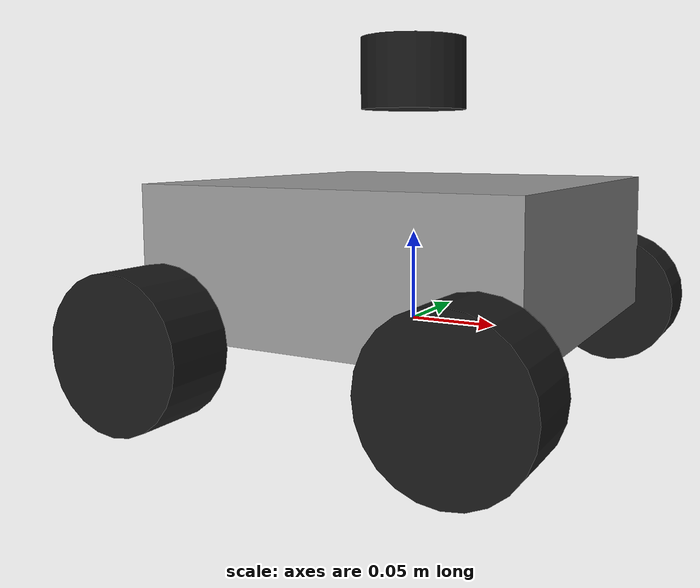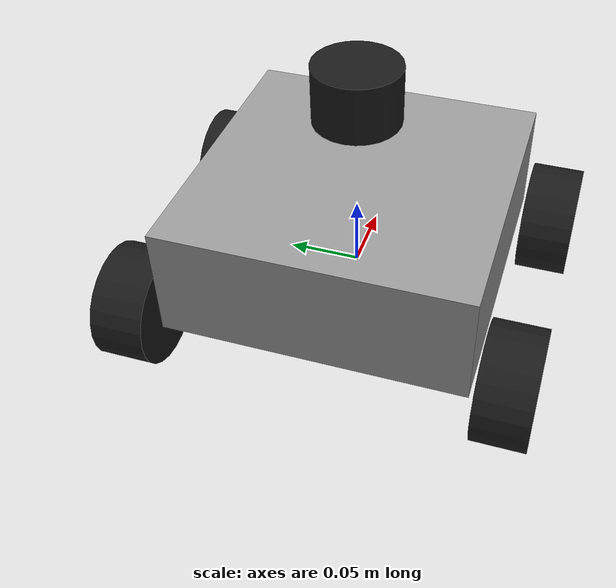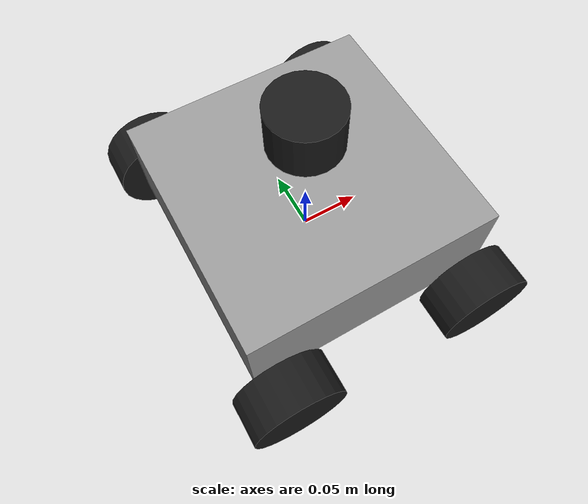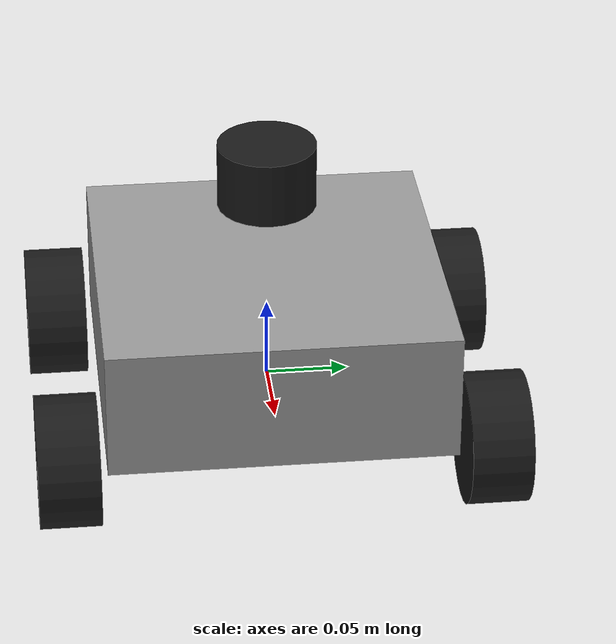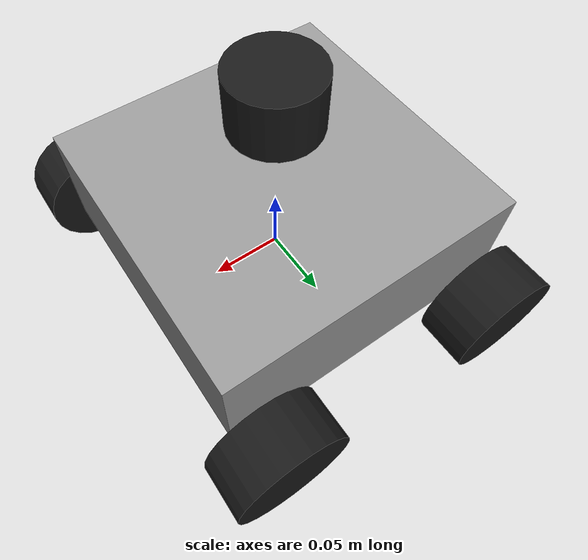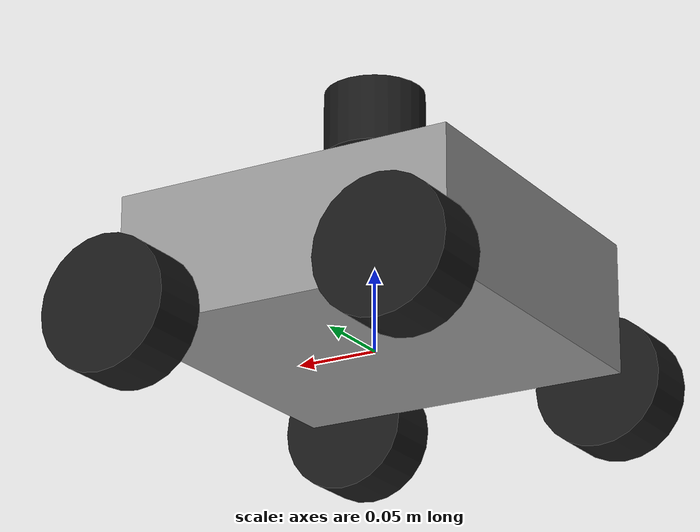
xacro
<?xml version="1.0"?>
<robot name="mecanum_agv" xmlns:xacro="http://www.ros.org/wiki/xacro">

  <!-- Measured dimensions (meters) of the real chassis —
       keep wheel_radius/wheel_separation_x/y in sync with config/robot_params.yaml -->
  <xacro:property name="chassis_length" value="0.21"/>  <!-- measured plate: 21 x 21 cm -->
  <xacro:property name="chassis_width" value="0.21"/>
  <xacro:property name="chassis_height" value="0.08"/>
  <xacro:property name="wheel_radius" value="0.04"/>
  <xacro:property name="wheel_width" value="0.037"/>
  <xacro:property name="wheel_separation_x" value="0.087"/>  <!-- lx: half wheelbase, measured just under 17.5 cm axle to axle -->
  <xacro:property name="wheel_separation_y" value="0.128"/>  <!-- ly: half track, (18.74 cm bracket-to-bracket + 2*(1.6 gap + 3.7/2 wheel)) / 2 -->
  <xacro:property name="lidar_offset_x" value="0.0"/>
  <xacro:property name="lidar_offset_z" value="0.10"/>       <!-- height of lidar above base_link -->

  <material name="grey">
    <color rgba="0.6 0.6 0.6 1"/>
  </material>
  <material name="black">
    <color rgba="0.1 0.1 0.1 1"/>
  </material>

  <!-- Required TF tree: base_footprint -> base_link -> laser_frame (odom->base_footprint comes
       from mecanum_drive_node, map->odom comes from slam_toolbox) -->
  <link name="base_footprint"/>

  <link name="base_link">
    <visual>
      <geometry>
        <box size="${chassis_length} ${chassis_width} ${chassis_height}"/>
      </geometry>
      <material name="grey"/>
    </visual>
    <collision>
      <geometry>
        <box size="${chassis_length} ${chassis_width} ${chassis_height}"/>
      </geometry>
    </collision>
    <inertial>
      <mass value="1.5"/>
      <inertia ixx="0.01" ixy="0" ixz="0" iyy="0.01" iyz="0" izz="0.01"/>
    </inertial>
  </link>

  <joint name="base_footprint_to_base_link" type="fixed">
    <parent link="base_footprint"/>
    <child link="base_link"/>
    <origin xyz="0 0 ${wheel_radius}" rpy="0 0 0"/>
  </joint>

  <link name="laser_frame">
    <visual>
      <geometry>
        <cylinder radius="0.03" length="0.04"/>
      </geometry>
      <material name="black"/>
    </visual>
  </link>

  <joint name="base_link_to_laser" type="fixed">
    <parent link="base_link"/>
    <child link="laser_frame"/>
    <origin xyz="${lidar_offset_x} 0 ${lidar_offset_z}" rpy="0 0 0"/>
  </joint>

  <!-- Wheels are visual-only placeholders (not wired into TF as moving joints); actual
       odometry is computed from encoder feedback in mecanum_drive_node, not from joint states -->
  <xacro:macro name="wheel" params="prefix x_reflect y_reflect">
    <link name="${prefix}_wheel">
      <visual>
        <origin xyz="0 0 0" rpy="1.5708 0 0"/>
        <geometry>
          <cylinder radius="${wheel_radius}" length="${wheel_width}"/>
        </geometry>
        <material name="black"/>
      </visual>
    </link>
    <joint name="${prefix}_wheel_joint" type="fixed">
      <parent link="base_link"/>
      <child link="${prefix}_wheel"/>
      <origin xyz="${x_reflect * wheel_separation_x} ${y_reflect * wheel_separation_y} ${-wheel_radius}" rpy="0 0 0"/>
    </joint>
  </xacro:macro>

  <xacro:wheel prefix="front_left" x_reflect="1" y_reflect="1"/>
  <xacro:wheel prefix="front_right" x_reflect="1" y_reflect="-1"/>
  <xacro:wheel prefix="rear_left" x_reflect="-1" y_reflect="1"/>
  <xacro:wheel prefix="rear_right" x_reflect="-1" y_reflect="-1"/>

</robot>
